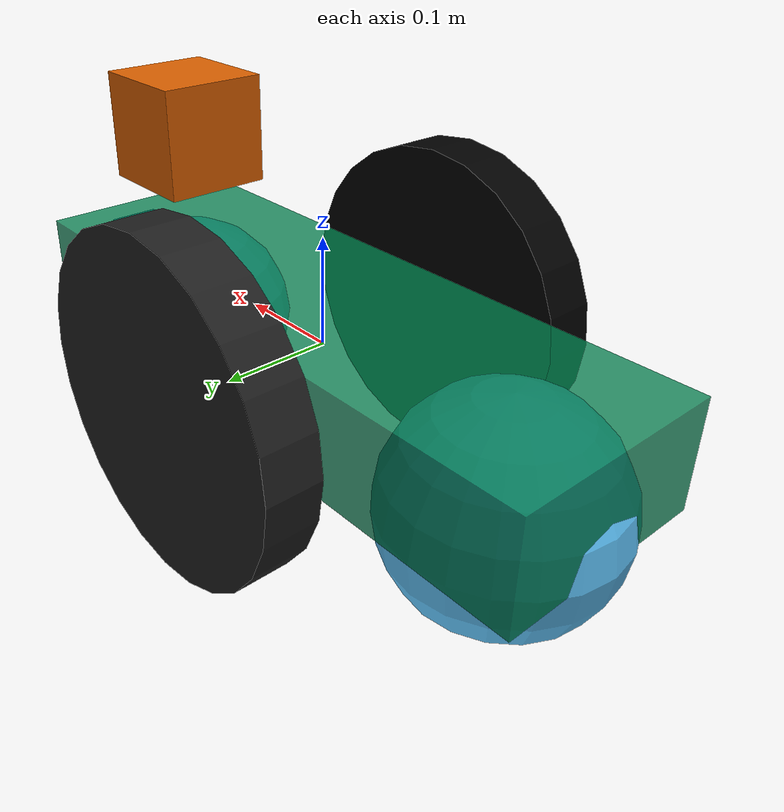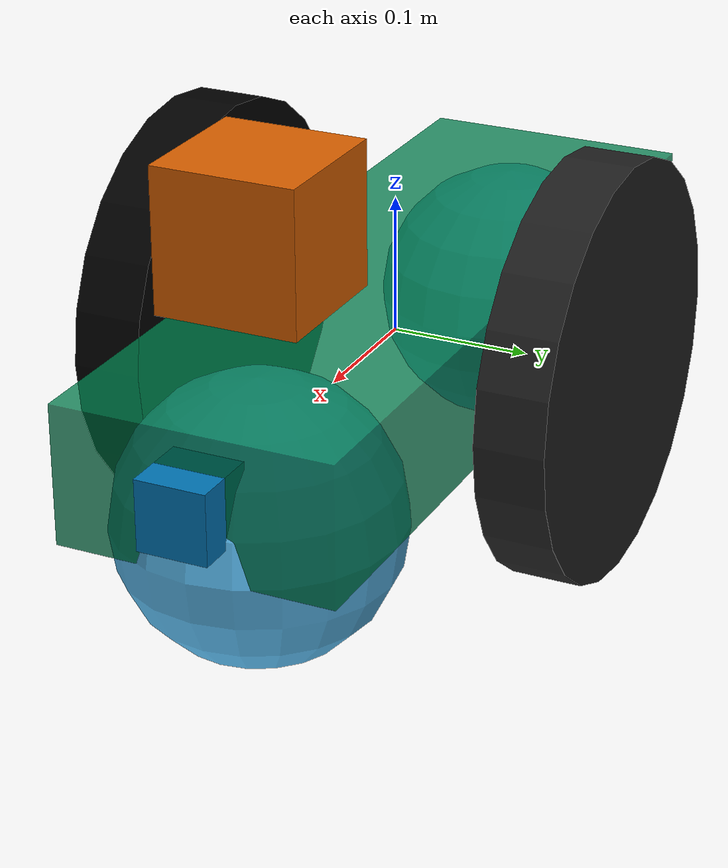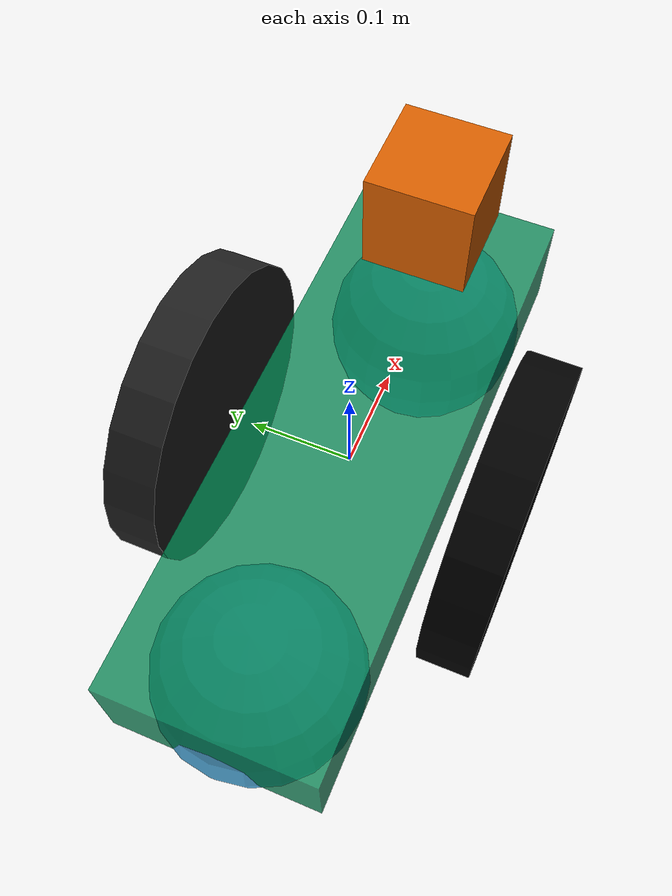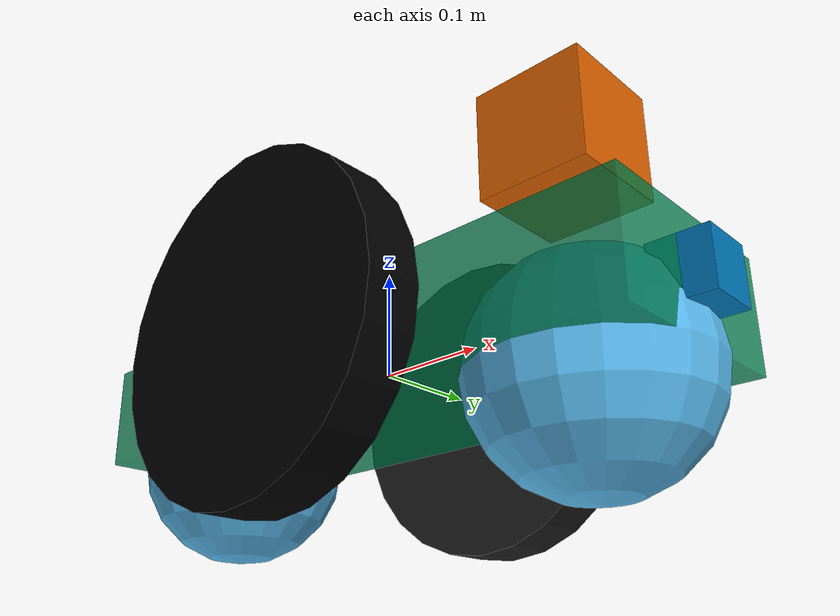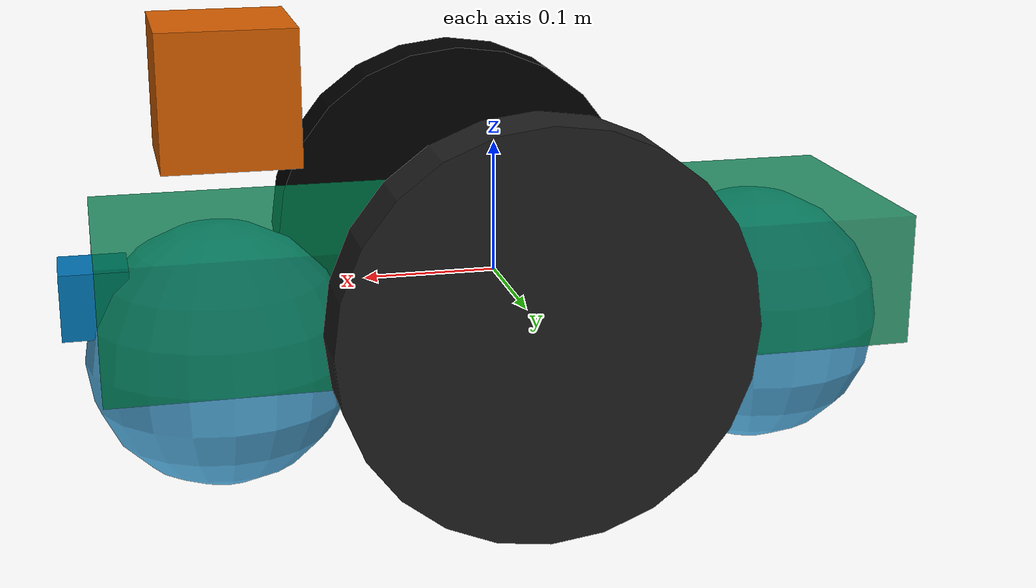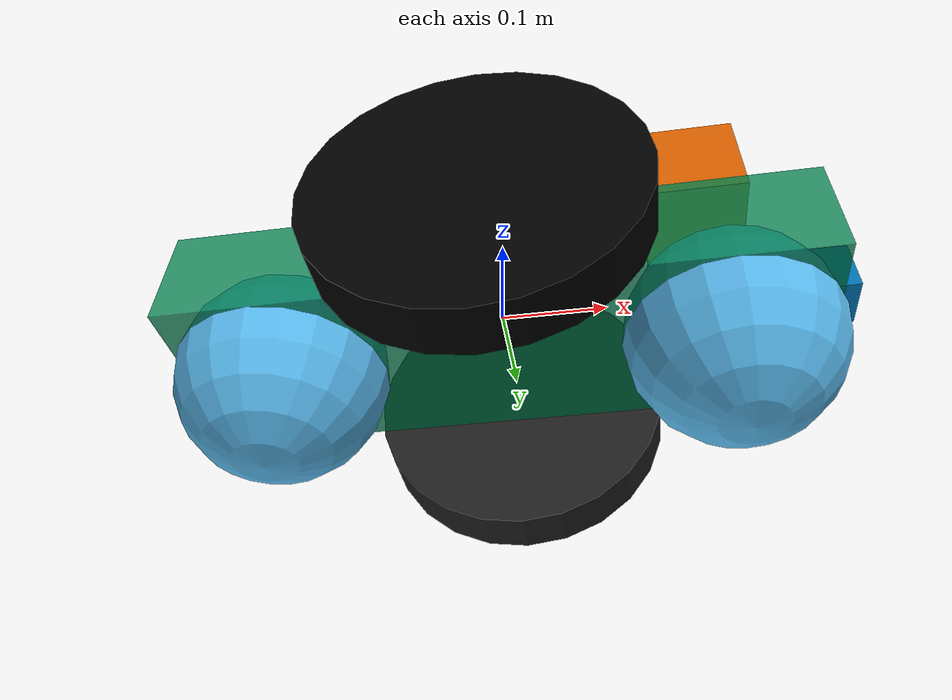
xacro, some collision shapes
<?xml version='1.0'?>

<robot name="my_robot" xmlns:xacro="http://www.ros.org/wiki/xacro">
 <xacro:include filename="$(find my_robot)/urdf/my_robot.gazebo" />

  <link name="robot_footprint"></link>

  <joint name="robot_footprint_joint" type="fixed">
    <origin xyz="0 0 0" rpy="0 0 0" />
    <parent link="robot_footprint"/>
    <child link="chassis" />
  </joint>

  <link name='chassis'>
    <pose>0 0 0.1 0 0 0</pose>

    <inertial>
      <mass value="15.0"/>
      <origin xyz="0.0 0 0" rpy=" 0 0 0"/>
      <inertia
          ixx="0.1" ixy="0" ixz="0"
          iyy="0.1" iyz="0"
          izz="0.1"
      />
    </inertial>

    <collision name='collision'>
      <origin xyz="0 0 0" rpy=" 0 0 0"/>
      <geometry>
        <box size=".6 .2 .1"/>
      </geometry>
    </collision>

    <visual name='chassis_visual'>
      <origin xyz="0 0 0" rpy=" 0 0 0"/>
      <geometry>
        <box size=".6 .2 .1"/>
      </geometry>
      <material name="Cyan">
        <color rgba="0 0.5 0.3 0.8"/>
      </material>
    </visual>

    <collision name='back_caster_collision'>
      <origin xyz="-0.21 0 -0.05" rpy=" 0 0 0"/>
      <geometry>
        <sphere radius="0.099"/>
      </geometry>
    </collision>

    <visual name='back_caster_visual'>
      <origin xyz="-0.21 0 -0.05" rpy=" 0 0 0"/>
      <geometry>
        <sphere radius="0.1"/>
      </geometry>
    </visual>

    <collision name='front_caster_collision'>
      <origin xyz="0.21 0 -0.05" rpy=" 0 0 0"/>
      <geometry>
        <sphere radius="0.099"/>
      </geometry>
    </collision>

    <visual name='front_caster_visual'>
      <origin xyz="0.21 0 -0.05" rpy=" 0 0 0"/>
      <geometry>
        <sphere radius="0.1"/>
      </geometry>
    </visual>

  </link>

  <link name='left_wheel'>
    <collision>
      <origin xyz="0 0 0" rpy=" 0 1.5707 1.5707"/>
      <geometry>
        <cylinder radius="0.15" length="0.05"/>
      </geometry>
    </collision>

    <inertial>
      <mass value="5.0"/>
      <origin xyz="0.0 0 0" rpy=" 0 0 0"/>
      <inertia
          ixx="0.1" ixy="0" ixz="0"
          iyy="0.1" iyz="0"
          izz="0.1"
      />
    </inertial>

    <visual>
      <origin xyz="0 0 0" rpy=" 0 1.5707 1.5707"/>
      <geometry>
        <cylinder radius="0.15" length="0.05"/>
      </geometry>
    </visual>

  </link>

  <joint type="continuous" name="left_wheel_hinge">
    <origin xyz="0 0.15 0" rpy="0 0 0"/>
    <child link="left_wheel"/>
    <parent link="chassis"/>
    <axis xyz="0 1 0" rpy="0 0 0"/>
    <limit effort="10000" velocity="0.1"/>
    <dynamics damping="1.0" friction="1.0"/>
  </joint>

<gazebo reference="left_wheel">
<material>Gazebo/Black</material>
</gazebo>

   <link name='right_wheel'>

    <collision>
      <origin xyz="0 0 0" rpy=" 0 1.5707 1.5707"/>
      <geometry>
        <cylinder radius="0.15" length="0.05"/>
      </geometry>
    </collision>

    <inertial>
      <mass value="5.0"/>
      <origin xyz="0.0 0 0" rpy=" 0 0 0"/>
      <inertia
          ixx="0.1" ixy="0" ixz="0"
          iyy="0.1" iyz="0"
          izz="0.1"
      />
    </inertial>

    <visual>
      <origin xyz="0 0 0" rpy=" 0 1.5707 1.5707"/>
      <geometry>
        <cylinder radius="0.15" length="0.05"/>
      </geometry>
      <material name="black">
        <color rgba="0 0 0 1.0"/>
      </material>
    </visual>

  </link>

  <joint name="right_wheel_hinge" type="continuous">
    <origin xyz="0 -0.15 0" rpy="0 0 0" />
    <parent link="chassis"/>
    <child link="right_wheel" />
    <axis xyz="0 1 0" rpy="0 0 0"/>
    <limit effort="10000" velocity="0.1"/>
    <dynamics damping="1.0" friction="1.0"/>
  </joint>

<gazebo reference="right_wheel">
<material>Gazebo/Black</material>
</gazebo>

  <link name="camera">
   <collision>
      <origin xyz="0 0 0" rpy=" 0 0 0"/>
      <geometry>
        <box size="0.05 0.05 0.05"/>
      </geometry>
    </collision>

    <inertial>
      <mass value="0.1"/>
      <origin xyz="0.1 0.05 0.05" rpy=" 0 0 0"/>
      <inertia
          ixx="1e-6" ixy="0" ixz="0"
          iyy="1e-6" iyz="0"
          izz="1e-6"
      />
    </inertial>

    <visual>
      <origin xyz="0 0 0" rpy=" 0 0 0"/>
      <geometry>
        <box size="0.05 0.05 0.05"/>
      </geometry>
    </visual>
   </link>

  <joint name="camera_joint" type="fixed">
    <origin xyz="0.3 0 0" rpy="0 0 0" />
    <parent link="chassis"/>
    <child link="camera" />
  </joint>

  <link name="hokuyo">
   <collision>
      <origin xyz="0 0 0" rpy=" 0 0 0"/>
      <geometry>
        <box size="0.1 0.1 0.1"/>
      </geometry>
    </collision>

    <inertial>
      <mass value="1e-5"/>
      <origin xyz="0 0 0" rpy=" 0 0 0"/>
      <inertia
          ixx="1e-6" ixy="0" ixz="0"
          iyy="1e-6" iyz="0"
          izz="1e-6"
      />
    </inertial>

    <visual>
      <origin xyz="0 0 0" rpy=" 0 0 0"/>
      <geometry>
        <mesh filename="package://my_robot/meshes/hokuyo.dae"/>
      </geometry>
    </visual>
   </link>

  <joint name="hokuyo_joint" type="fixed">
    <origin xyz="0.2 0 0.15" rpy="0 0 0" />
    <parent link="chassis"/>
    <child link="hokuyo" />
    <axis xyz="0 1 0" rpy="0 0 0"/>
  </joint>

  <joint name="camera_optical_joint" type="fixed">
    <origin xyz="0 0 0" rpy="-1.5707 0 -1.5707"/>
    <parent link="camera"/>
    <child link="camera_link_optical"/>
  </joint>

  <link name="camera_link_optical">
  </link>

</robot>
